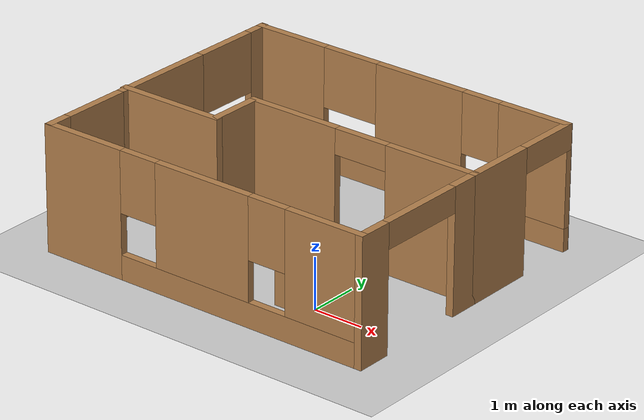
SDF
<sdf version="1.6">
 <world name="default">
  <light name="sun" type="directional">
   <pose>0 0 10 0 -0 0</pose>
   <diffuse>0.8 0.8 0.8 1</diffuse>
   <specular>0.2 0.2 0.2 1</specular>
   <attenuation>
    <range>1000</range>
    <constant>0.9</constant>
    <linear>0.01</linear>
    <quadratic>0.001</quadratic>
   </attenuation>
   <direction>-0.5 0.1 -0.9</direction>
  </light>
  <model name="ground_plane">
   <static>1</static>
   <link name="link">
    <collision name="collision">
     <geometry><plane><normal>0 0 1</normal><size>100 100</size></plane></geometry>
     <surface>
      <contact><collide_bitmask>65535</collide_bitmask></contact>
      <friction><ode><mu>100</mu><mu2>50</mu2></ode></friction>
     </surface>
    </collision>
    <visual name="visual">
     <cast_shadows>0</cast_shadows>
     <geometry><plane><normal>0 0 1</normal><size>100 100</size></plane></geometry>
     <material>
      <script><uri>file://media/materials/scripts/gazebo.material</uri><name>Gazebo/Grey</name></script>
     </material>
    </visual>
   </link>
  </model>
  <gravity>0 0 -9.8</gravity>
  <magnetic_field>6e-06 2.3e-05 -4.2e-05</magnetic_field>
  <atmosphere type="adiabatic"/>
  <physics name="default_physics" default="0" type="ode">
   <max_step_size>0.001</max_step_size>
   <real_time_factor>1</real_time_factor>
   <real_time_update_rate>1000</real_time_update_rate>
  </physics>
  <scene><ambient>0.4 0.4 0.4 1</ambient><background>0.7 0.7 0.7 1</background><shadows>1</shadows></scene>
  <audio><device>default</device></audio>
  <spherical_coordinates>
   <surface_model>EARTH_WGS84</surface_model>
   <latitude_deg>0</latitude_deg>
   <longitude_deg>0</longitude_deg>
   <elevation>0</elevation>
   <heading_deg>0</heading_deg>
  </spherical_coordinates>
  <model name="wall_house.world">
   <pose>-1.57185 1.71354 -0.040149 -0.005248 0.001149 0.001168</pose>
   <link name="Wall_0">
    <pose>0.017562 -2.88005 0 0 -0 0</pose>
    <visual name="Wall_0_Visual_0">
     <pose>-2.65918 0 1.25 0 -0 0</pose>
     <geometry><box><size>1.74942 0.15 2.5</size></box></geometry>
     <material>
      <script><uri>file://media/materials/scripts/gazebo.material</uri><name>Gazebo/Wood</name></script>
      <ambient>1 1 1 1</ambient>
     </material>
     <meta><layer>0</layer></meta>
    </visual>
    <collision name="Wall_0_Collision_0">
     <geometry><box><size>1.74942 0.15 2.5</size></box></geometry>
     <pose>-2.65918 0 1.25 0 -0 0</pose>
    </collision>
    <visual name="Wall_0_Visual_1">
     <pose>0.874709 0 0.25 0 -0 0</pose>
     <geometry><box><size>5.31836 0.15 0.5</size></box></geometry>
     <material>
      <script><uri>file://media/materials/scripts/gazebo.material</uri><name>Gazebo/Wood</name></script>
      <ambient>1 1 1 1</ambient>
     </material>
     <meta><layer>0</layer></meta>
    </visual>
    <collision name="Wall_0_Collision_1">
     <geometry><box><size>5.31836 0.15 0.5</size></box></geometry>
     <pose>0.874709 0 0.25 0 -0 0</pose>
    </collision>
    <visual name="Wall_0_Visual_2">
     <pose>0.051702 0 1.5 0 -0 0</pose>
     <geometry><box><size>2.07235 0.15 2</size></box></geometry>
     <material>
      <script><uri>file://media/materials/scripts/gazebo.material</uri><name>Gazebo/Wood</name></script>
      <ambient>1 1 1 1</ambient>
     </material>
     <meta><layer>0</layer></meta>
    </visual>
    <collision name="Wall_0_Collision_2">
     <geometry><box><size>2.07235 0.15 2</size></box></geometry>
     <pose>0.051702 0 1.5 0 -0 0</pose>
    </collision>
    <visual name="Wall_0_Visual_3">
     <pose>2.71088 0 1.5 0 -0 0</pose>
     <geometry><box><size>1.64601 0.15 2</size></box></geometry>
     <material>
      <script><uri>file://media/materials/scripts/gazebo.material</uri><name>Gazebo/Wood</name></script>
      <ambient>1 1 1 1</ambient>
     </material>
     <meta><layer>0</layer></meta>
    </visual>
    <collision name="Wall_0_Collision_3">
     <geometry><box><size>1.64601 0.15 2</size></box></geometry>
     <pose>2.71088 0 1.5 0 -0 0</pose>
    </collision>
    <visual name="Wall_0_Visual_4">
     <pose>-1.38447 0 1.9 0 -0 0</pose>
     <geometry><box><size>0.8 0.15 1.2</size></box></geometry>
     <material>
      <script><uri>file://media/materials/scripts/gazebo.material</uri><name>Gazebo/Wood</name></script>
      <ambient>1 1 1 1</ambient>
     </material>
     <meta><layer>0</layer></meta>
    </visual>
    <collision name="Wall_0_Collision_4">
     <geometry><box><size>0.8 0.15 1.2</size></box></geometry>
     <pose>-1.38447 0 1.9 0 -0 0</pose>
    </collision>
    <visual name="Wall_0_Visual_5">
     <pose>1.48788 0 1.9 0 -0 0</pose>
     <geometry><box><size>0.8 0.15 1.2</size></box></geometry>
     <material>
      <script><uri>file://media/materials/scripts/gazebo.material</uri><name>Gazebo/Wood</name></script>
      <ambient>1 1 1 1</ambient>
     </material>
     <meta><layer>0</layer></meta>
    </visual>
    <collision name="Wall_0_Collision_5">
     <geometry><box><size>0.8 0.15 1.2</size></box></geometry>
     <pose>1.48788 0 1.9 0 -0 0</pose>
    </collision>
   </link>
   <link name="Wall_13">
    <pose>3.47645 -1.34479 0 0 -0 1.5708</pose>
    <visual name="Wall_13_Visual_0">
     <pose>-1.25553 0 1.25 0 -0 0</pose>
     <geometry><box><size>0.709564 0.15 2.5</size></box></geometry>
     <material>
      <script><uri>file://media/materials/scripts/gazebo.material</uri><name>Gazebo/Wood</name></script>
      <ambient>1 1 1 1</ambient>
     </material>
     <meta><layer>0</layer></meta>
    </visual>
    <collision name="Wall_13_Collision_0">
     <geometry><box><size>0.709564 0.15 2.5</size></box></geometry>
     <pose>-1.25553 0 1.25 0 -0 0</pose>
    </collision>
    <visual name="Wall_13_Visual_1">
     <pose>1.25991 0 1.25 0 -0 0</pose>
     <geometry><box><size>0.700802 0.15 2.5</size></box></geometry>
     <material>
      <script><uri>file://media/materials/scripts/gazebo.material</uri><name>Gazebo/Wood</name></script>
      <ambient>1 1 1 1</ambient>
     </material>
     <meta><layer>0</layer></meta>
    </visual>
    <collision name="Wall_13_Collision_1">
     <geometry><box><size>0.700802 0.15 2.5</size></box></geometry>
     <pose>1.25991 0 1.25 0 -0 0</pose>
    </collision>
    <visual name="Wall_13_Visual_2">
     <pose>0.004381 0 2.25 0 -0 0</pose>
     <geometry><box><size>1.81025 0.15 0.5</size></box></geometry>
     <material>
      <script><uri>file://media/materials/scripts/gazebo.material</uri><name>Gazebo/Wood</name></script>
      <ambient>1 1 1 1</ambient>
     </material>
     <meta><layer>0</layer></meta>
    </visual>
    <collision name="Wall_13_Collision_2">
     <geometry><box><size>1.81025 0.15 0.5</size></box></geometry>
     <pose>0.004381 0 2.25 0 -0 0</pose>
    </collision>
   </link>
   <link name="Wall_15">
    <collision name="Wall_15_Collision">
     <geometry><box><size>1.20228 0.15 2.5</size></box></geometry>
     <pose>0 0 1.25 0 -0 0</pose>
    </collision>
    <visual name="Wall_15_Visual">
     <pose>0 0 1.25 0 -0 0</pose>
     <geometry><box><size>1.20228 0.15 2.5</size></box></geometry>
     <material>
      <script><uri>file://media/materials/scripts/gazebo.material</uri><name>Gazebo/Wood</name></script>
      <ambient>1 1 1 1</ambient>
     </material>
     <meta><layer>0</layer></meta>
    </visual>
    <pose>-1.39668 -0.335663 0 0 -0 -1.5708</pose>
   </link>
   <link name="Wall_16">
    <collision name="Wall_16_Collision">
     <geometry><box><size>2.25 0.15 2.5</size></box></geometry>
     <pose>0 0 1.25 0 -0 0</pose>
    </collision>
    <visual name="Wall_16_Visual">
     <pose>0 0 1.25 0 -0 0</pose>
     <geometry><box><size>2.25 0.15 2.5</size></box></geometry>
     <material>
      <script><uri>file://media/materials/scripts/gazebo.material</uri><name>Gazebo/Wood</name></script>
      <ambient>1 1 1 1</ambient>
     </material>
     <meta><layer>0</layer></meta>
    </visual>
    <pose>-2.42645 -0.861802 0 0 -0 3.14159</pose>
   </link>
   <link name="Wall_2">
    <pose>-3.44133 0.010136 0 0 -0 1.5708</pose>
    <visual name="Wall_2_Visual_0">
     <pose>-2.70174 0 1.25 0 -0 0</pose>
     <geometry><box><size>0.486445 0.15 2.5</size></box></geometry>
     <material>
      <script><uri>file://media/materials/scripts/gazebo.material</uri><name>Gazebo/Wood</name></script>
      <ambient>1 1 1 1</ambient>
     </material>
     <meta><layer>0</layer></meta>
    </visual>
    <collision name="Wall_2_Collision_0">
     <geometry><box><size>0.486445 0.15 2.5</size></box></geometry>
     <pose>-2.70174 0 1.25 0 -0 0</pose>
    </collision>
    <visual name="Wall_2_Visual_1">
     <pose>0.243223 0 0.25 0 -0 0</pose>
     <geometry><box><size>5.40348 0.15 0.5</size></box></geometry>
     <material>
      <script><uri>file://media/materials/scripts/gazebo.material</uri><name>Gazebo/Wood</name></script>
      <ambient>1 1 1 1</ambient>
     </material>
     <meta><layer>0</layer></meta>
    </visual>
    <collision name="Wall_2_Collision_1">
     <geometry><box><size>5.40348 0.15 0.5</size></box></geometry>
     <pose>0.243223 0 0.25 0 -0 0</pose>
    </collision>
    <visual name="Wall_2_Visual_2">
     <pose>0.014833 0 1.5 0 -0 0</pose>
     <geometry><box><size>2.17348 0.15 2</size></box></geometry>
     <material>
      <script><uri>file://media/materials/scripts/gazebo.material</uri><name>Gazebo/Wood</name></script>
      <ambient>1 1 1 1</ambient>
     </material>
     <meta><layer>0</layer></meta>
    </visual>
    <collision name="Wall_2_Collision_2">
     <geometry><box><size>2.17348 0.15 2</size></box></geometry>
     <pose>0.014833 0 1.5 0 -0 0</pose>
    </collision>
    <visual name="Wall_2_Visual_3">
     <pose>2.69634 0 1.5 0 -0 0</pose>
     <geometry><box><size>0.497234 0.15 2</size></box></geometry>
     <material>
      <script><uri>file://media/materials/scripts/gazebo.material</uri><name>Gazebo/Wood</name></script>
      <ambient>1 1 1 1</ambient>
     </material>
     <meta><layer>0</layer></meta>
    </visual>
    <collision name="Wall_2_Collision_3">
     <geometry><box><size>0.497234 0.15 2</size></box></geometry>
     <pose>2.69634 0 1.5 0 -0 0</pose>
    </collision>
    <visual name="Wall_2_Visual_4">
     <pose>-1.76521 0 1.9 0 -0 0</pose>
     <geometry><box><size>1.38661 0.15 1.2</size></box></geometry>
     <material>
      <script><uri>file://media/materials/scripts/gazebo.material</uri><name>Gazebo/Wood</name></script>
      <ambient>1 1 1 1</ambient>
     </material>
     <meta><layer>0</layer></meta>
    </visual>
    <collision name="Wall_2_Collision_4">
     <geometry><box><size>1.38661 0.15 1.2</size></box></geometry>
     <pose>-1.76521 0 1.9 0 -0 0</pose>
    </collision>
    <visual name="Wall_2_Visual_5">
     <pose>1.77465 0 1.9 0 -0 0</pose>
     <geometry><box><size>1.34615 0.15 1.2</size></box></geometry>
     <material>
      <script><uri>file://media/materials/scripts/gazebo.material</uri><name>Gazebo/Wood</name></script>
      <ambient>1 1 1 1</ambient>
     </material>
     <meta><layer>0</layer></meta>
    </visual>
    <collision name="Wall_2_Collision_5">
     <geometry><box><size>1.34615 0.15 1.2</size></box></geometry>
     <pose>1.77465 0 1.9 0 -0 0</pose>
    </collision>
   </link>
   <link name="Wall_4">
    <pose>0.017562 2.85987 0 0 -0 0</pose>
    <visual name="Wall_4_Visual_0">
     <pose>-2.7266 0 1.25 0 -0 0</pose>
     <geometry><box><size>1.61458 0.15 2.5</size></box></geometry>
     <material>
      <script><uri>file://media/materials/scripts/gazebo.material</uri><name>Gazebo/Wood</name></script>
      <ambient>1 1 1 1</ambient>
     </material>
     <meta><layer>0</layer></meta>
    </visual>
    <collision name="Wall_4_Collision_0">
     <geometry><box><size>1.61458 0.15 2.5</size></box></geometry>
     <pose>-2.7266 0 1.25 0 -0 0</pose>
    </collision>
    <visual name="Wall_4_Visual_1">
     <pose>0.807288 0 0.25 0 -0 0</pose>
     <geometry><box><size>5.4532 0.15 0.5</size></box></geometry>
     <material>
      <script><uri>file://media/materials/scripts/gazebo.material</uri><name>Gazebo/Wood</name></script>
      <ambient>1 1 1 1</ambient>
     </material>
     <meta><layer>0</layer></meta>
    </visual>
    <collision name="Wall_4_Collision_1">
     <geometry><box><size>5.4532 0.15 0.5</size></box></geometry>
     <pose>0.807288 0 0.25 0 -0 0</pose>
    </collision>
    <visual name="Wall_4_Visual_2">
     <pose>0.261987 0 1.5 0 -0 0</pose>
     <geometry><box><size>1.95349 0.15 2</size></box></geometry>
     <material>
      <script><uri>file://media/materials/scripts/gazebo.material</uri><name>Gazebo/Wood</name></script>
      <ambient>1 1 1 1</ambient>
     </material>
     <meta><layer>0</layer></meta>
    </visual>
    <collision name="Wall_4_Collision_2">
     <geometry><box><size>1.95349 0.15 2</size></box></geometry>
     <pose>0.261987 0 1.5 0 -0 0</pose>
    </collision>
    <visual name="Wall_4_Visual_3">
     <pose>2.78631 0 1.5 0 -0 0</pose>
     <geometry><box><size>1.49516 0.15 2</size></box></geometry>
     <material>
      <script><uri>file://media/materials/scripts/gazebo.material</uri><name>Gazebo/Wood</name></script>
      <ambient>1 1 1 1</ambient>
     </material>
     <meta><layer>0</layer></meta>
    </visual>
    <collision name="Wall_4_Collision_3">
     <geometry><box><size>1.49516 0.15 2</size></box></geometry>
     <pose>2.78631 0 1.5 0 -0 0</pose>
    </collision>
    <visual name="Wall_4_Visual_4">
     <pose>-1.31703 0 1.9 0 -0 0</pose>
     <geometry><box><size>1.20456 0.15 1.2</size></box></geometry>
     <material>
      <script><uri>file://media/materials/scripts/gazebo.material</uri><name>Gazebo/Wood</name></script>
      <ambient>1 1 1 1</ambient>
     </material>
     <meta><layer>0</layer></meta>
    </visual>
    <collision name="Wall_4_Collision_4">
     <geometry><box><size>1.20456 0.15 1.2</size></box></geometry>
     <pose>-1.31703 0 1.9 0 -0 0</pose>
    </collision>
    <visual name="Wall_4_Visual_5">
     <pose>1.63873 0 1.9 0 -0 0</pose>
     <geometry><box><size>0.8 0.15 1.2</size></box></geometry>
     <material>
      <script><uri>file://media/materials/scripts/gazebo.material</uri><name>Gazebo/Wood</name></script>
      <ambient>1 1 1 1</ambient>
     </material>
     <meta><layer>0</layer></meta>
    </visual>
    <collision name="Wall_4_Collision_5">
     <geometry><box><size>0.8 0.15 1.2</size></box></geometry>
     <pose>1.63873 0 1.9 0 -0 0</pose>
    </collision>
   </link>
   <link name="Wall_6">
    <pose>3.47645 1.52517 0 0 -0 -1.5708</pose>
    <visual name="Wall_6_Visual_0">
     <pose>-1.40355 0 1.25 0 -0 0</pose>
     <geometry><box><size>0.012387 0.15 2.5</size></box></geometry>
     <material>
      <script><uri>file://media/materials/scripts/gazebo.material</uri><name>Gazebo/Wood</name></script>
      <ambient>1 1 1 1</ambient>
     </material>
     <meta><layer>0</layer></meta>
    </visual>
    <collision name="Wall_6_Collision_0">
     <geometry><box><size>0.012387 0.15 2.5</size></box></geometry>
     <pose>-1.40355 0 1.25 0 -0 0</pose>
    </collision>
    <visual name="Wall_6_Visual_1">
     <pose>0.668585 0 1.25 0 -0 0</pose>
     <geometry><box><size>1.48232 0.15 2.5</size></box></geometry>
     <material>
      <script><uri>file://media/materials/scripts/gazebo.material</uri><name>Gazebo/Wood</name></script>
      <ambient>1 1 1 1</ambient>
     </material>
     <meta><layer>0</layer></meta>
    </visual>
    <collision name="Wall_6_Collision_1">
     <geometry><box><size>1.48232 0.15 2.5</size></box></geometry>
     <pose>0.668585 0 1.25 0 -0 0</pose>
    </collision>
    <visual name="Wall_6_Visual_2">
     <pose>-0.734967 0 2.25 0 -0 0</pose>
     <geometry><box><size>1.32478 0.15 0.5</size></box></geometry>
     <material>
      <script><uri>file://media/materials/scripts/gazebo.material</uri><name>Gazebo/Wood</name></script>
      <ambient>1 1 1 1</ambient>
     </material>
     <meta><layer>0</layer></meta>
    </visual>
    <collision name="Wall_6_Collision_2">
     <geometry><box><size>1.32478 0.15 0.5</size></box></geometry>
     <pose>-0.734967 0 2.25 0 -0 0</pose>
    </collision>
   </link>
   <link name="Wall_7">
    <pose>1.02832 0.190476 0 0 -0 3.14159</pose>
    <visual name="Wall_7_Visual_0">
     <pose>-1.54347 0 1.25 0 -0 0</pose>
     <geometry><box><size>1.91305 0.15 2.5</size></box></geometry>
     <material>
      <script><uri>file://media/materials/scripts/gazebo.material</uri><name>Gazebo/Wood</name></script>
      <ambient>1 1 1 1</ambient>
     </material>
     <meta><layer>0</layer></meta>
    </visual>
    <collision name="Wall_7_Collision_0">
     <geometry><box><size>1.91305 0.15 2.5</size></box></geometry>
     <pose>-1.54347 0 1.25 0 -0 0</pose>
    </collision>
    <visual name="Wall_7_Visual_1">
     <pose>1.51293 0 1.25 0 -0 0</pose>
     <geometry><box><size>1.97414 0.15 2.5</size></box></geometry>
     <material>
      <script><uri>file://media/materials/scripts/gazebo.material</uri><name>Gazebo/Wood</name></script>
      <ambient>1 1 1 1</ambient>
     </material>
     <meta><layer>0</layer></meta>
    </visual>
    <collision name="Wall_7_Collision_1">
     <geometry><box><size>1.97414 0.15 2.5</size></box></geometry>
     <pose>1.51293 0 1.25 0 -0 0</pose>
    </collision>
    <visual name="Wall_7_Visual_2">
     <pose>-0.030544 0 2.25 0 -0 0</pose>
     <geometry><box><size>1.1128 0.15 0.5</size></box></geometry>
     <material>
      <script><uri>file://media/materials/scripts/gazebo.material</uri><name>Gazebo/Wood</name></script>
      <ambient>1 1 1 1</ambient>
     </material>
     <meta><layer>0</layer></meta>
    </visual>
    <collision name="Wall_7_Collision_2">
     <geometry><box><size>1.1128 0.15 0.5</size></box></geometry>
     <pose>-0.030544 0 2.25 0 -0 0</pose>
    </collision>
   </link>
   <static>1</static>
  </model>
  <model name="bookshelf">
   <static>1</static>
   <link name="link">
    <inertial><mass>1</mass></inertial>
    <collision name="back">
     <pose>0 0.005 0.6 0 -0 0</pose>
     <geometry><box><size>0.9 0.01 1.2</size></box></geometry>
    </collision>
    <visual name="visual1">
     <pose>0 0.005 0.6 0 -0 0</pose>
     <geometry><box><size>0.9 0.01 1.2</size></box></geometry>
     <material>
      <script><uri>file://media/materials/scripts/gazebo.material</uri><name>Gazebo/Wood</name></script>
     </material>
    </visual>
    <collision name="left_side">
     <pose>0.45 -0.195 0.6 0 -0 0</pose>
     <geometry><box><size>0.02 0.4 1.2</size></box></geometry>
    </collision>
    <visual name="visual2">
     <pose>0.45 -0.195 0.6 0 -0 0</pose>
     <geometry><box><size>0.02 0.4 1.2</size></box></geometry>
     <material>
      <script><uri>file://media/materials/scripts/gazebo.material</uri><name>Gazebo/Wood</name></script>
     </material>
    </visual>
    <collision name="right_side">
     <pose>-0.45 -0.195 0.6 0 -0 0</pose>
     <geometry><box><size>0.02 0.4 1.2</size></box></geometry>
    </collision>
    <visual name="visual3">
     <pose>-0.45 -0.195 0.6 0 -0 0</pose>
     <geometry><box><size>0.02 0.4 1.2</size></box></geometry>
     <material>
      <script><uri>file://media/materials/scripts/gazebo.material</uri><name>Gazebo/Wood</name></script>
     </material>
    </visual>
    <collision name="bottom">
     <pose>0 -0.195 0.03 0 -0 0</pose>
     <geometry><box><size>0.88 0.4 0.06</size></box></geometry>
    </collision>
    <visual name="visual4">
     <pose>0 -0.195 0.03 0 -0 0</pose>
     <geometry><box><size>0.88 0.4 0.06</size></box></geometry>
     <material>
      <script><uri>file://media/materials/scripts/gazebo.material</uri><name>Gazebo/Wood</name></script>
     </material>
    </visual>
    <collision name="top">
     <pose>0 -0.195 1.19 0 -0 0</pose>
     <geometry><box><size>0.88 0.4 0.02</size></box></geometry>
    </collision>
    <visual name="visual5">
     <pose>0 -0.195 1.19 0 -0 0</pose>
     <geometry><box><size>0.88 0.4 0.02</size></box></geometry>
     <material>
      <script><uri>file://media/materials/scripts/gazebo.material</uri><name>Gazebo/Wood</name></script>
     </material>
    </visual>
    <collision name="low_shelf">
     <pose>0 -0.195 0.43 0 -0 0</pose>
     <geometry><box><size>0.88 0.4 0.02</size></box></geometry>
    </collision>
    <visual name="visual6">
     <pose>0 -0.195 0.43 0 -0 0</pose>
     <geometry><box><size>0.88 0.4 0.02</size></box></geometry>
     <material>
      <script><uri>file://media/materials/scripts/gazebo.material</uri><name>Gazebo/Wood</name></script>
     </material>
    </visual>
    <collision name="high_shelf">
     <pose>0 -0.195 0.8 0 -0 0</pose>
     <geometry><box><size>0.88 0.4 0.02</size></box></geometry>
    </collision>
    <visual name="visual7">
     <pose>0 -0.195 0.8 0 -0 0</pose>
     <geometry><box><size>0.88 0.4 0.02</size></box></geometry>
     <material>
      <script><uri>file://media/materials/scripts/gazebo.material</uri><name>Gazebo/Wood</name></script>
     </material>
    </visual>
   </link>
   <pose>-4.01413 3.6373 0 0 -0 1.56765</pose>
  </model>
  <model name="cabinet">
   <static>1</static>
   <link name="cabinet_bottom_plate">
    <inertial>
     <pose>0 0 -1 0 -0 0</pose>
     <inertia><ixx>2.05</ixx><ixy>0</ixy><ixz>0</ixz><iyy>2.05</iyy><iyz>0</iyz><izz>2.05</izz></inertia>
     <mass>25</mass>
    </inertial>
    <collision name="cabinet_bottom_plate_geom">
     <pose>0 0 0.01 0 -0 0</pose>
     <geometry><box><size>0.45 0.45 0.02</size></box></geometry>
    </collision>
    <visual name="cabinet_bottom_plate_geom_visual">
     <pose>0 0 0.01 0 -0 0</pose>
     <geometry><box><size>0.45 0.45 0.02</size></box></geometry>
     <material>
      <script><uri>file://media/materials/scripts/gazebo.material</uri><name>Gazebo/Wood</name></script>
     </material>
    </visual>
    <collision name="cabinet_bottom_plate_geom_cabinet_back_plate">
     <pose>0.235 0 0.51 0 -0 0</pose>
     <geometry><box><size>0.02 0.45 1.02</size></box></geometry>
    </collision>
    <visual name="cabinet_bottom_plate_geom_cabinet_back_plate_visual">
     <pose>0.235 0 0.51 0 -0 0</pose>
     <geometry><box><size>0.02 0.45 1.02</size></box></geometry>
     <material>
      <script><uri>file://media/materials/scripts/gazebo.material</uri><name>Gazebo/Wood</name></script>
     </material>
    </visual>
    <collision name="cabinet_bottom_plate_geom_cabinet_left_plate">
     <pose>0 0.235 0.51 0 -0 0</pose>
     <geometry><box><size>0.45 0.02 1.02</size></box></geometry>
    </collision>
    <visual name="cabinet_bottom_plate_geom_cabinet_left_plate_visual">
     <pose>0 0.235 0.51 0 -0 0</pose>
     <geometry><box><size>0.45 0.02 1.02</size></box></geometry>
     <material>
      <script><uri>file://media/materials/scripts/gazebo.material</uri><name>Gazebo/Wood</name></script>
     </material>
    </visual>
    <collision name="cabinet_bottom_plate_geom_cabinet_middle_plate">
     <pose>0 0 0.51 0 -0 0</pose>
     <geometry><box><size>0.45 0.45 0.02</size></box></geometry>
    </collision>
    <visual name="cabinet_bottom_plate_geom_cabinet_middle_plate_visual">
     <pose>0 0 0.51 0 -0 0</pose>
     <geometry><box><size>0.45 0.45 0.02</size></box></geometry>
     <material>
      <script><uri>file://media/materials/scripts/gazebo.material</uri><name>Gazebo/Wood</name></script>
     </material>
    </visual>
    <collision name="cabinet_bottom_plate_geom_cabinet_right_plate">
     <pose>0 -0.235 0.51 0 -0 0</pose>
     <geometry><box><size>0.45 0.02 1.02</size></box></geometry>
    </collision>
    <visual name="cabinet_bottom_plate_geom_cabinet_right_plate_visual">
     <pose>0 -0.235 0.51 0 -0 0</pose>
     <geometry><box><size>0.45 0.02 1.02</size></box></geometry>
     <material>
      <script><uri>file://media/materials/scripts/gazebo.material</uri><name>Gazebo/Wood</name></script>
     </material>
    </visual>
    <collision name="cabinet_bottom_plate_geom_cabinet_top_plate">
     <pose>0 0 1.01 0 -0 0</pose>
     <geometry><box><size>0.45 0.45 0.02</size></box></geometry>
    </collision>
    <visual name="cabinet_bottom_plate_geom_cabinet_top_plate_visual">
     <pose>0 0 1.01 0 -0 0</pose>
     <geometry><box><size>0.45 0.45 0.02</size></box></geometry>
     <material>
      <script><uri>file://media/materials/scripts/gazebo.material</uri><name>Gazebo/Wood</name></script>
     </material>
    </visual>
   </link>
   <pose>-0.432242 -0.055963 0 0 -0 0</pose>
  </model>
  <model name="unit_sphere">
   <pose>-2.1333 0.208305 0.5 0 -0 0</pose>
   <link name="link">
    <inertial>
     <mass>1</mass>
     <inertia><ixx>0.1</ixx><ixy>0</ixy><ixz>0</ixz><iyy>0.1</iyy><iyz>0</iyz><izz>0.1</izz></inertia>
    </inertial>
    <collision name="collision"><geometry><sphere><radius>0.5</radius></sphere></geometry></collision>
    <visual name="visual">
     <geometry><sphere><radius>0.5</radius></sphere></geometry>
     <material>
      <script><name>Gazebo/Grey</name><uri>file://media/materials/scripts/gazebo.material</uri></script>
     </material>
    </visual>
   </link>
  </model>
  <model name="houseWO"><static>0</static><pose>-2.55846 4.62045 0 0 -0 0</pose></model>
 </world>
</sdf>
